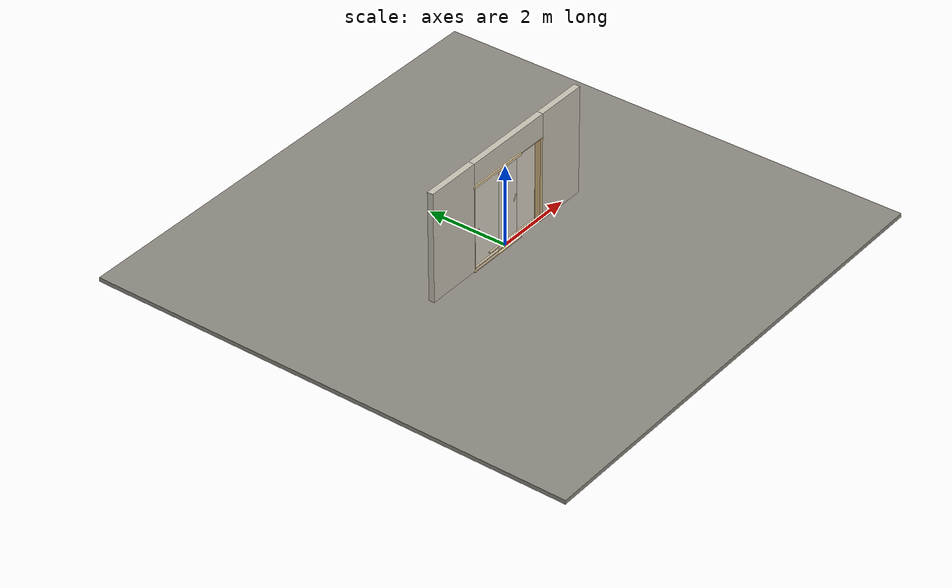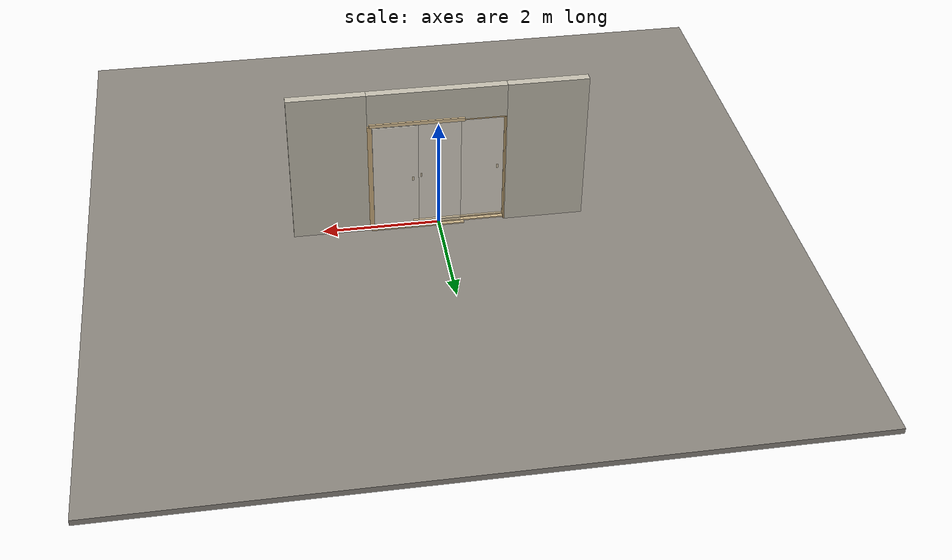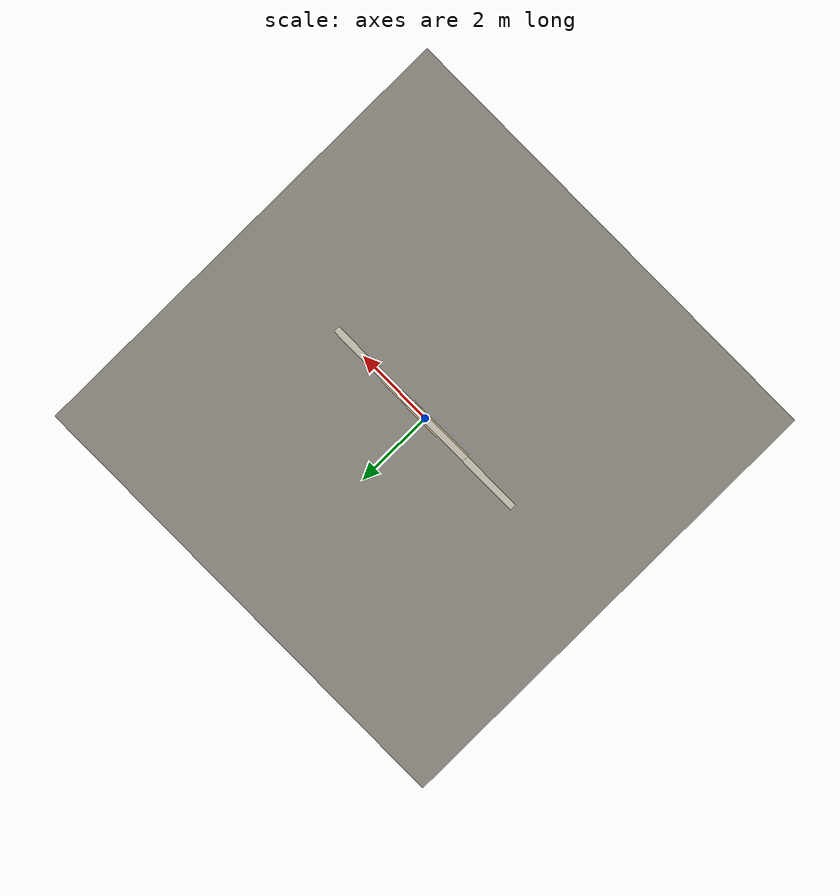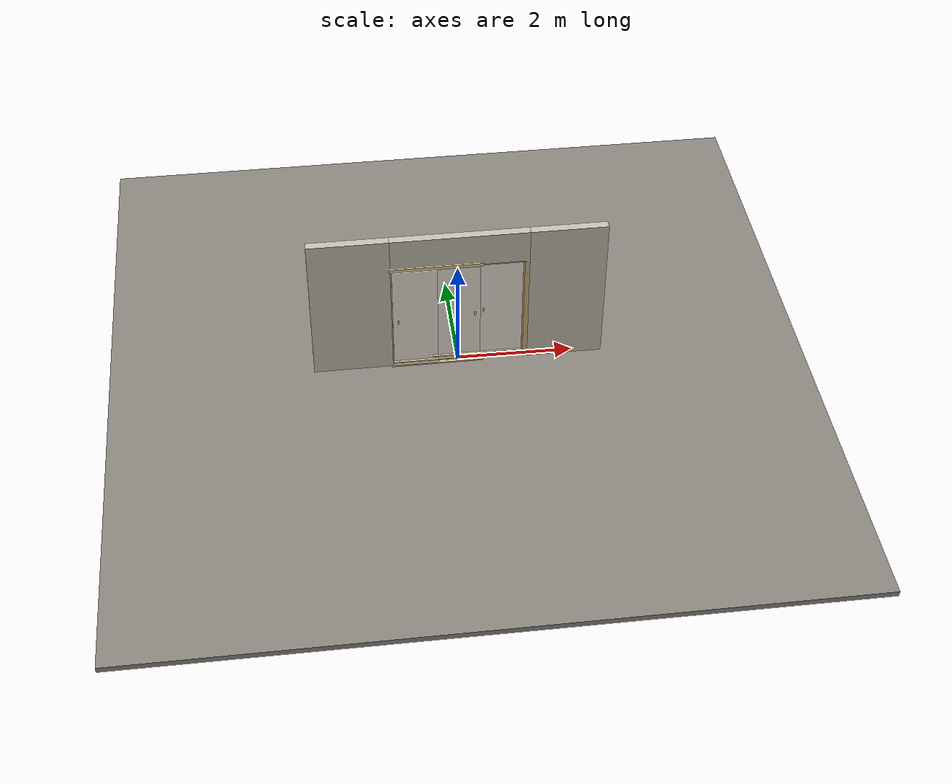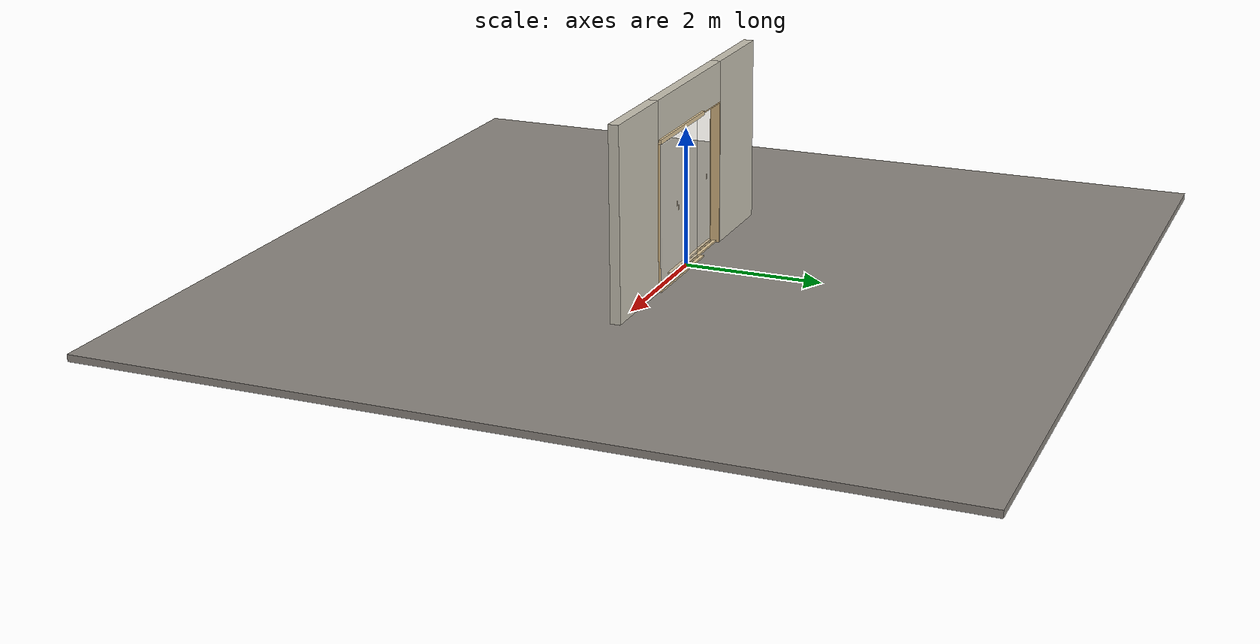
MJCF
<?xml version="1.0" ?>
<mujoco model="db0542_sliding_bypass_minimal">
  <compiler angle="radian" meshdir="../../hardware" texturedir="../../textures" autolimits="true" inertiafromgeom="false"/>
  <option timestep="0.002" integrator="implicitfast" cone="elliptic" impratio="10" noslip_iterations="3">
    <flag multiccd="enable"/>
  </option>
  <size memory="16M"/>
  <default>
    <geom condim="4" solref="0.005 1" solimp="0.95 0.99 0.001"/>
    <joint solreflimit="0.005 1" solimplimit="0.95 0.99 0.001"/>
    <tendon solreflimit="0.005 1"/>
    <equality solref="0.002 1"/>
  </default>
  <visual>
    <headlight ambient="0.4 0.4 0.4" diffuse="0.7 0.7 0.7" specular="0.2 0.2 0.2"/>
    <quality shadowsize="4096"/>
    <map znear="0.01" zfar="60"/>
  </visual>
  <asset>
    <material name="mat_floor" rgba="0.55 0.53 0.5 1" specular="0.2" shininess="0.15" reflectance="0"/>
    <material name="mat_wall" rgba="0.78 0.76 0.7 1" specular="0.2" shininess="0.1" reflectance="0"/>
    <material name="mat_frame" rgba="0.82 0.7 0.5 1" specular="0.2" shininess="0.45" reflectance="0"/>
    <material name="mat_track" rgba="0.8 0.81 0.83 1" specular="0.8" shininess="0.6" reflectance="0.4"/>
    <material name="mat_shikii" rgba="0.88 0.78 0.6 1" specular="0.2" shininess="0.4" reflectance="0"/>
    <material name="mat_leaf_0" rgba="0.98 0.96 0.9 0.45" specular="0.2" shininess="0.1" reflectance="0.1"/>
    <material name="mat_kumiko" rgba="0.88 0.78 0.6 1" specular="0.2" shininess="0.4" reflectance="0"/>
    <material name="mat_roller" rgba="0.65 0.66 0.68 1" specular="0.74" shininess="0.5" reflectance="0.36"/>
    <material name="mat_op_hinoki" rgba="0.88 0.78 0.6 1" specular="0.2" shininess="0.4" reflectance="0"/>
    <material name="mat_leaf_1" rgba="0.98 0.96 0.9 0.45" specular="0.2" shininess="0.1" reflectance="0.1"/>
    <material name="mat_leaf_2" rgba="0.98 0.96 0.9 0.45" specular="0.2" shininess="0.1" reflectance="0.1"/>
    <material name="mat_hook" rgba="0.75 0.76 0.77 1" specular="0.8" shininess="0.65" reflectance="0.4"/>
    <texture name="skybox" type="skybox" builtin="gradient" rgb1="0.6 0.7 0.85" rgb2="0.9 0.92 0.95" width="256" height="256"/>
  </asset>
  <worldbody>
    <light name="sun" pos="1.5 -2.5 4" dir="-0.3 0.5 -0.8" directional="true" diffuse="0.8 0.8 0.8" specular="0.3 0.3 0.3" castshadow="true"/>
    <light name="fill" pos="-1.5 2.5 3" dir="0.3 -0.5 -0.7" directional="true" diffuse="0.35 0.35 0.4" castshadow="false"/>
    <camera name="robot_view" pos="0 -2.72125 1.80795" xyaxes="1 0 0 0 0.26963 0.962964" fovy="52"/>
    <camera name="far_view" pos="0 2.72125 1.80795" xyaxes="-1 0 0 0 -0.26963 0.962964" fovy="52"/>
    <camera name="iso" pos="2.06815 -2.28585 2.24335" xyaxes="0.741536 0.670913 0 -0.242917 0.268487 0.932151" fovy="46"/>
    <camera name="detail_handle" pos="-0.845 -0.895 1.28" xyaxes="0.97561 0.219512 0 -0.070934 0.315262 0.94635" fovy="38"/>
    <geom name="floor" type="box" size="6 6 0.05" pos="0 0 -0.05" material="mat_floor" group="0" contype="1" conaffinity="1" friction="0.8 0.005 0.0001" density="2400"/>
    <geom name="wall_left" type="box" size="0.6815 0.0725 1.35" pos="-1.8185 0 1.35" material="mat_wall" group="0" contype="1" conaffinity="1" friction="0.6 0.005 0.0001" density="800"/>
    <geom name="wall_right" type="box" size="0.6515 0.0725 1.35" pos="1.8485 0 1.35" material="mat_wall" group="0" contype="1" conaffinity="1" friction="0.6 0.005 0.0001" density="800"/>
    <geom name="wall_header" type="box" size="1.167 0.0725 0.2945" pos="0.03 0 2.4055" material="mat_wall" group="0" contype="1" conaffinity="1" friction="0.6 0.005 0.0001" density="800"/>
    <geom name="jamb_l" type="box" size="0.0095 0.0725 1.046" pos="-1.1275 0 1.046" material="mat_frame" group="0" contype="1" conaffinity="1" friction="0.6 0.005 0.0001" density="300"/>
    <geom name="jamb_head" type="box" size="1.137 0.0725 0.0095" pos="0 0 2.1015" material="mat_frame" group="0" contype="1" conaffinity="1" friction="0.6 0.005 0.0001" density="300"/>
    <geom name="leaf_0_shikii" type="box" size="0.797 0.025 0.012" pos="-0.368 -0.08 0.012" material="mat_shikii" group="0" contype="1" conaffinity="1" friction="0.6 0.005 0.0001" density="2700"/>
    <geom name="leaf_0_kamoi" type="box" size="0.797 0.025 0.03" pos="-0.368 -0.08 2.122" material="mat_shikii" group="0" contype="1" conaffinity="1" friction="0.6 0.005 0.0001" density="410"/>
    <geom name="leaf_1_shikii" type="box" size="1.163 0.025 0.012" pos="0 0 0.012" material="mat_shikii" group="0" contype="1" conaffinity="1" friction="0.6 0.005 0.0001" density="2700"/>
    <geom name="leaf_1_kamoi" type="box" size="1.163 0.025 0.03" pos="0 0 2.122" material="mat_shikii" group="0" contype="1" conaffinity="1" friction="0.6 0.005 0.0001" density="410"/>
    <geom name="leaf_2_shikii" type="box" size="0.797 0.025 0.012" pos="0.368 0.08 0.012" material="mat_shikii" group="0" contype="1" conaffinity="1" friction="0.6 0.005 0.0001" density="2700"/>
    <geom name="leaf_2_kamoi" type="box" size="0.797 0.025 0.03" pos="0.368 0.08 2.122" material="mat_shikii" group="0" contype="1" conaffinity="1" friction="0.6 0.005 0.0001" density="410"/>
    <geom name="jamb_latch_0" type="box" size="0.0395 0.0725 1.046" pos="1.1575 0 1.046" material="mat_frame" group="0" contype="1" conaffinity="1" friction="0.6 0.005 0.0001" density="300"/>
    <site name="approach_point" pos="0 -1.5 0" quat="1 0 0 0" size="0.05" rgba="0.2 0.9 0.2 0.5" group="4"/>
    <site name="goal_point" pos="0 1.5 0" quat="1 0 0 0" size="0.05" rgba="0.2 0.9 0.2 0.5" group="4"/>
    <site name="door_plane_center" pos="0 0 1.046" quat="1 0 0 0" size="0.02" rgba="0.2 0.9 0.2 0.5" group="4"/>
    <body name="leaf_0" pos="-0.734 -0.08 0">
      <inertial pos="-0.000094 -0.000005 1.042986" mass="7.640436" quat="0.500004 0.499989 0.500011 -0.499996" diaginertia="0.370360868 2.62869274 2.997906728"/>
      <joint name="leaf_0_slide" type="slide" axis="1 0 0" limited="true" range="0 1.448" damping="2.383022" frictionloss="45.073931" armature="0.5"/>
      <geom name="leaf_0_slab" type="box" size="0.381 0.015 1.016" pos="0 0 1.043" material="mat_leaf_0" group="0" contype="1" conaffinity="1" friction="0.3 0.005 0.0001" density="1"/>
      <geom name="leaf_0_pull_n" type="box" size="0.015 0.0005 0.04" pos="-0.291 -0.0155 1" material="mat_op_hinoki" group="1" contype="0" conaffinity="0" density="1000"/>
      <site name="leaf_0_pull_grip_n" pos="-0.291 -0.015 1" quat="1 0 0 0" size="0.012" rgba="0.2 0.9 0.2 0.5" group="4"/>
      <site name="leaf_0_edge_mid" pos="-0.381 0 1.043" quat="1 0 0 0" size="0.02" rgba="0.2 0.9 0.2 0.5" group="4"/>
    </body>
    <body name="leaf_1" pos="0 0 0">
      <inertial pos="0.000094 -0.000005 1.042986" mass="7.640436" quat="0.499996 0.500011 0.499989 -0.500004" diaginertia="0.370360868 2.62869274 2.997906728"/>
      <joint name="leaf_1_slide" type="slide" axis="-1 0 0" limited="true" range="0 0.714" damping="2.383022" frictionloss="45.073931" armature="0.5"/>
      <geom name="leaf_1_slab" type="box" size="0.381 0.015 1.016" pos="0 0 1.043" material="mat_leaf_1" group="0" contype="1" conaffinity="1" friction="0.3 0.005 0.0001" density="1"/>
      <geom name="leaf_1_pull_n" type="box" size="0.015 0.0005 0.04" pos="0.291 -0.0155 1" material="mat_op_hinoki" group="1" contype="0" conaffinity="0" density="1000"/>
      <site name="leaf_1_pull_grip_n" pos="0.291 -0.015 1" quat="1 0 0 0" size="0.012" rgba="0.2 0.9 0.2 0.5" group="4"/>
      <site name="leaf_1_edge_mid" pos="0.381 0 1.043" quat="1 0 0 0" size="0.02" rgba="0.2 0.9 0.2 0.5" group="4"/>
    </body>
    <body name="leaf_2" pos="0.734 0.08 0">
      <inertial pos="-0.000094 -0.000005 1.042986" mass="7.640436" quat="0.500004 0.499989 0.500011 -0.499996" diaginertia="0.370360868 2.62869274 2.997906728"/>
      <joint name="leaf_2_slide" type="slide" axis="-1 0 0" limited="true" range="0 1.448" damping="2.383022" frictionloss="45.073931" armature="0.5"/>
      <geom name="leaf_2_slab" type="box" size="0.381 0.015 1.016" pos="0 0 1.043" material="mat_leaf_2" group="0" contype="1" conaffinity="1" friction="0.3 0.005 0.0001" density="1"/>
      <geom name="leaf_2_pull_n" type="box" size="0.015 0.0005 0.04" pos="-0.291 -0.0155 1" material="mat_op_hinoki" group="1" contype="0" conaffinity="0" density="1000"/>
      <site name="leaf_2_pull_grip_n" pos="-0.291 -0.015 1" quat="1 0 0 0" size="0.012" rgba="0.2 0.9 0.2 0.5" group="4"/>
      <site name="leaf_2_edge_mid" pos="-0.381 0 1.043" quat="1 0 0 0" size="0.02" rgba="0.2 0.9 0.2 0.5" group="4"/>
    </body>
  </worldbody>
  <sensor>
    <jointpos name="leaf_0_slide_pos" joint="leaf_0_slide"/>
    <jointvel name="leaf_0_slide_vel" joint="leaf_0_slide"/>
    <jointpos name="leaf_1_slide_pos" joint="leaf_1_slide"/>
    <jointvel name="leaf_1_slide_vel" joint="leaf_1_slide"/>
    <jointpos name="leaf_2_slide_pos" joint="leaf_2_slide"/>
    <jointvel name="leaf_2_slide_vel" joint="leaf_2_slide"/>
  </sensor>
</mujoco>
